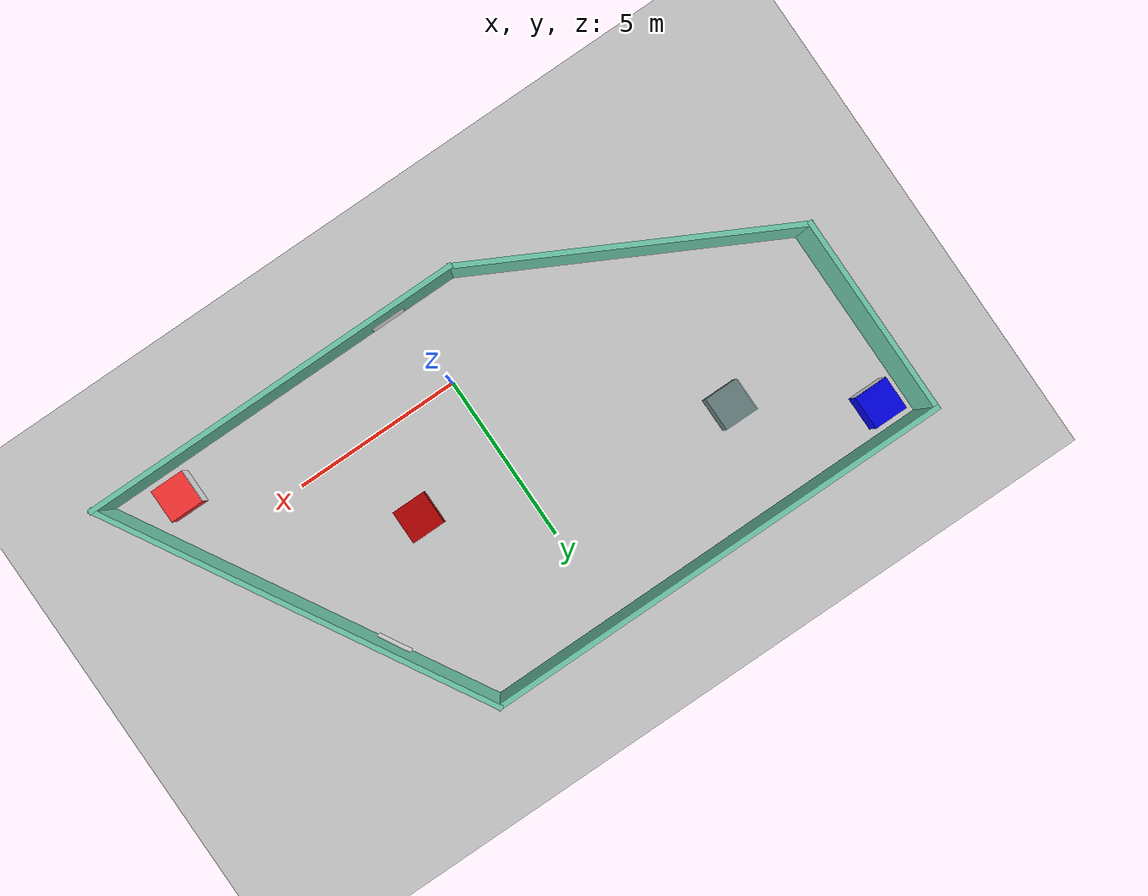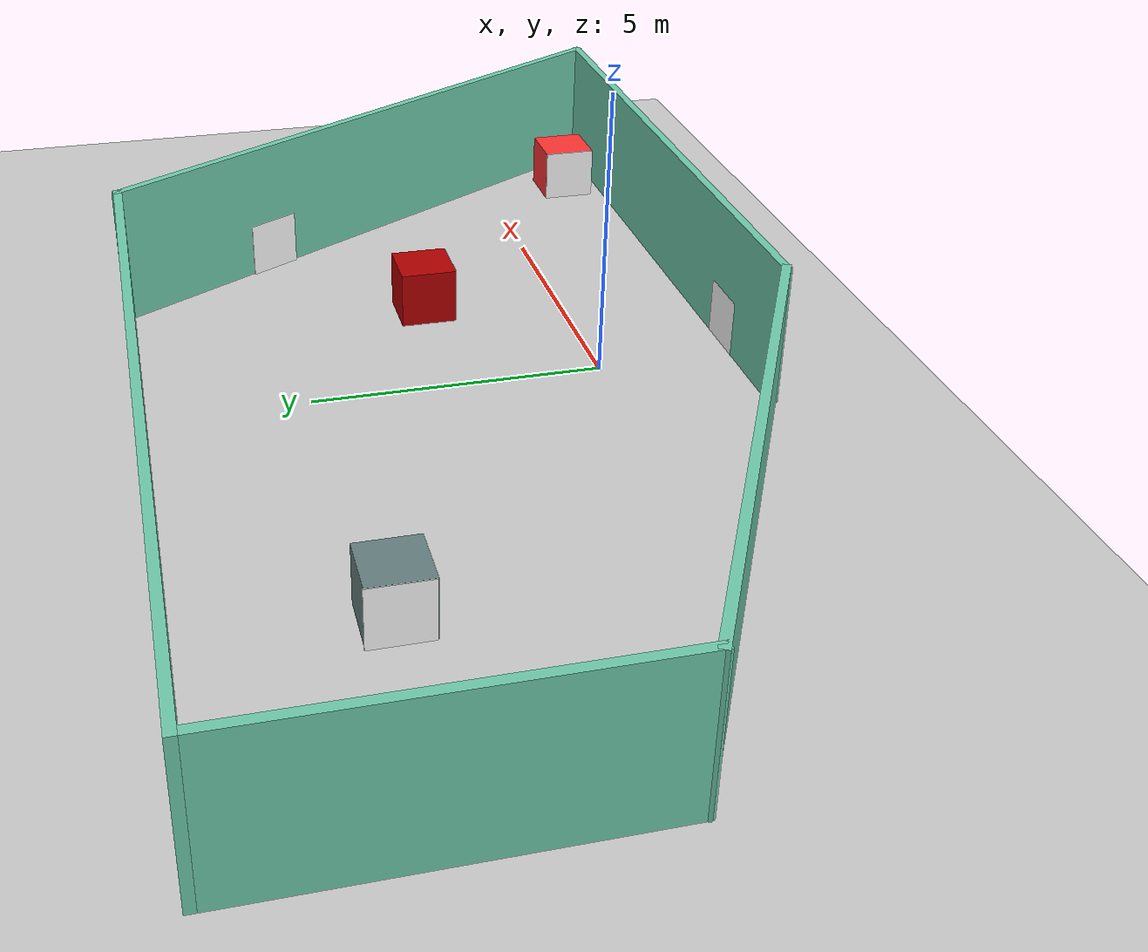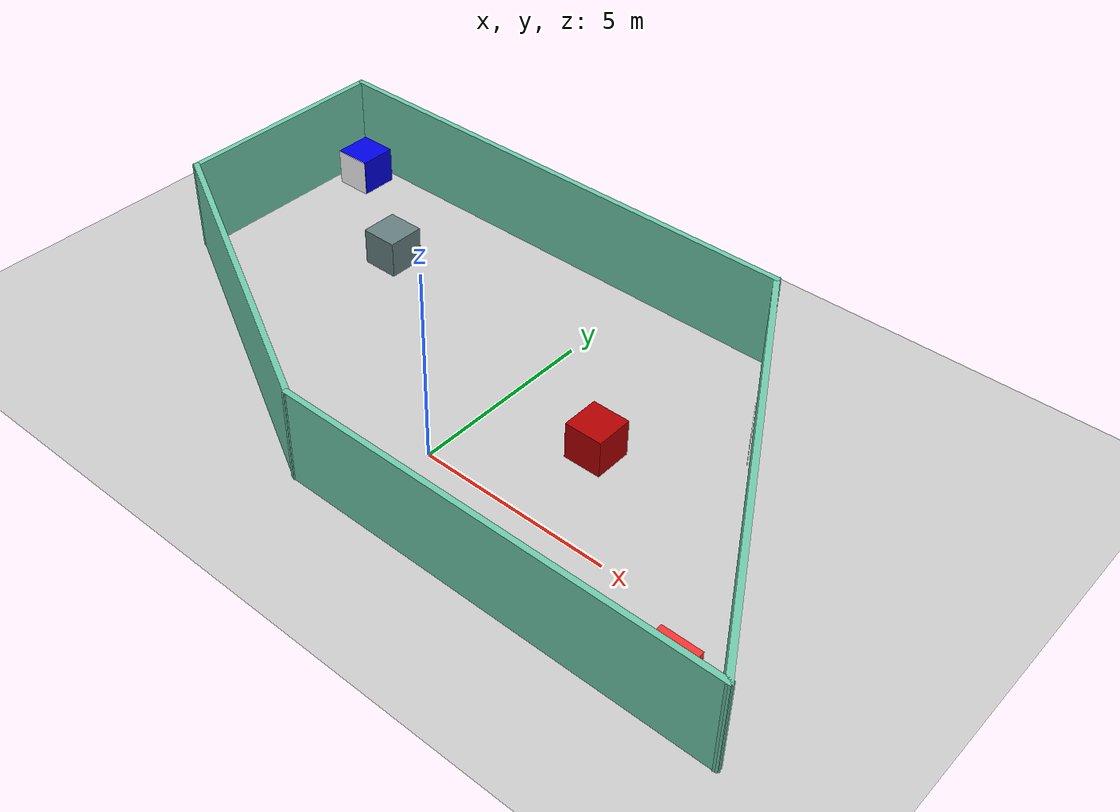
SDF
<sdf version="1.7">
 <world name="default">
  <scene><ambient>0.4 0.4 0.4 1</ambient><background>0.7 0.7 0.7 1</background><shadows>1</shadows></scene>
  <light name="sun" type="directional">
   <pose>0 0 10 0 -0 0</pose>
   <diffuse>0.8 0.8 0.8 1</diffuse>
   <specular>0.2 0.2 0.2 1</specular>
   <attenuation>
    <range>1000</range>
    <constant>0.9</constant>
    <linear>0.01</linear>
    <quadratic>0.001</quadratic>
   </attenuation>
   <direction>-0.5 0.1 -0.9</direction>
   <spot><inner_angle>0</inner_angle><outer_angle>0</outer_angle><falloff>0</falloff></spot>
  </light>
  <model name="ground_plane">
   <static>1</static>
   <link name="link">
    <collision name="collision">
     <geometry><plane><normal>0 0 1</normal><size>100 100</size></plane></geometry>
     <surface>
      <contact><collide_bitmask>65535</collide_bitmask></contact>
      <friction><ode><mu>100</mu><mu2>50</mu2></ode></friction>
     </surface>
    </collision>
    <visual name="visual">
     <cast_shadows>0</cast_shadows>
     <geometry><plane><normal>0 0 1</normal><size>100 100</size></plane></geometry>
     <material>
      <script><uri>file://media/materials/scripts/gazebo.material</uri><name>Gazebo/Grey</name></script>
     </material>
    </visual>
   </link>
  </model>
  <physics type="ode">
   <real_time_update_rate>1000</real_time_update_rate>
   <max_step_size>0.001</max_step_size>
   <real_time_factor>1</real_time_factor>
   <ode>
    <solver>
     <type>quick</type>
     <iters>150</iters>
     <precon_iters>0</precon_iters>
     <sor>1.4</sor>
     <use_dynamic_moi_rescaling>1</use_dynamic_moi_rescaling>
    </solver>
    <constraints>
     <cfm>1e-05</cfm>
     <erp>0.2</erp>
     <contact_max_correcting_vel>2000</contact_max_correcting_vel>
     <contact_surface_layer>0.01</contact_surface_layer>
    </constraints>
   </ode>
  </physics>
  <gravity>0 0 -9.8</gravity>
  <magnetic_field>6e-06 2.3e-05 -4.2e-05</magnetic_field>
  <atmosphere type="adiabatic"/>
  <spherical_coordinates>
   <surface_model>EARTH_WGS84</surface_model>
   <latitude_deg>0</latitude_deg>
   <longitude_deg>0</longitude_deg>
   <elevation>0</elevation>
   <heading_deg>0</heading_deg>
  </spherical_coordinates>
  <model name="maze">
   <pose>-0.216892 2.6712 0 0 -0 0</pose>
   <link name="Wall_0">
    <collision name="Wall_0_Collision">
     <geometry><box><size>11.5 0.15 2.5</size></box></geometry>
     <pose>0 0 1.25 0 -0 0</pose>
    </collision>
    <visual name="Wall_0_Visual">
     <pose>0 0 1.25 0 -0 0</pose>
     <geometry><box><size>11.5 0.15 2.5</size></box></geometry>
     <material>
      <script><uri>file://media/materials/scripts/gazebo.material</uri><name>Gazebo/Grey</name></script>
      <ambient>0.435294 0.796078 0.67451 1</ambient>
     </material>
     <meta><layer>0</layer></meta>
    </visual>
    <pose>4.21189 -5.1312 0 0 -0 0</pose>
   </link>
   <link name="Wall_2">
    <collision name="Wall_2_Collision">
     <geometry><box><size>12 0.15 2.5</size></box></geometry>
     <pose>0 0 1.25 0 -0 0</pose>
    </collision>
    <visual name="Wall_2_Visual">
     <pose>0 0 1.25 0 -0 0</pose>
     <geometry><box><size>12 0.15 2.5</size></box></geometry>
     <material>
      <script><uri>file://media/materials/scripts/gazebo.material</uri><name>Gazebo/Grey</name></script>
      <ambient>0.435294 0.796078 0.67451 1</ambient>
     </material>
     <meta><layer>0</layer></meta>
    </visual>
    <pose>6.92439 -0 0 0 -0 2.0944</pose>
   </link>
   <link name="Wall_3">
    <collision name="Wall_3_Collision">
     <geometry><box><size>14 0.15 2.5</size></box></geometry>
     <pose>0 0 1.25 0 -0 0</pose>
    </collision>
    <visual name="Wall_3_Visual">
     <pose>0 0 1.25 0 -0 0</pose>
     <geometry><box><size>14 0.15 2.5</size></box></geometry>
     <material>
      <script><uri>file://media/materials/scripts/gazebo.material</uri><name>Gazebo/Grey</name></script>
      <ambient>0.435294 0.796078 0.67451 1</ambient>
     </material>
     <meta><layer>0</layer></meta>
    </visual>
    <pose>-2.96311 5.1312 0 0 -0 3.14159</pose>
   </link>
   <link name="Wall_4">
    <collision name="Wall_4_Collision">
     <geometry><box><size>6 0.15 2.5</size></box></geometry>
     <pose>0 0 1.25 0 -0 0</pose>
    </collision>
    <visual name="Wall_4_Visual">
     <pose>0 0 1.25 0 -0 0</pose>
     <geometry><box><size>6 0.15 2.5</size></box></geometry>
     <material>
      <script><uri>file://media/materials/scripts/gazebo.material</uri><name>Gazebo/Grey</name></script>
      <ambient>0.435294 0.796078 0.67451 1</ambient>
     </material>
     <meta><layer>0</layer></meta>
    </visual>
    <pose>-9.88811 2.2062 0 0 -0 -1.5708</pose>
   </link>
   <link name="Wall_5">
    <collision name="Wall_5_Collision">
     <geometry><box><size>9.66052 0.15 2.5</size></box></geometry>
     <pose>0 0 1.25 0 -0 0</pose>
    </collision>
    <visual name="Wall_5_Visual">
     <pose>0 0 1.25 0 -0 0</pose>
     <geometry><box><size>9.66052 0.15 2.5</size></box></geometry>
     <material>
      <script><uri>file://media/materials/scripts/gazebo.material</uri><name>Gazebo/Grey</name></script>
      <ambient>0.435294 0.796078 0.67451 1</ambient>
     </material>
     <meta><layer>0</layer></meta>
    </visual>
    <pose>-5.67561 -2.925 0 0 -0 -0.482449</pose>
   </link>
   <static>1</static>
  </model>
  <model name="unit_box_2">
   <link name="link">
    <inertial>
     <mass>100</mass>
     <inertia><ixx>16.6667</ixx><ixy>0</ixy><ixz>0</ixz><iyy>16.6667</iyy><iyz>0</iyz><izz>16.6667</izz></inertia>
    </inertial>
    <visual name="visual">
     <geometry><box><size>1 1 1</size></box></geometry>
     <material>
      <script><name>Gazebo/Grey</name><uri>file://media/materials/scripts/gazebo.material</uri></script>
      <shader type="pixel"><normal_map>__default__</normal_map></shader>
      <ambient>0.3 0.3 0.3 1</ambient>
      <diffuse>1 0.2 0.2 1</diffuse>
      <specular>0.01 0.01 0.01 1</specular>
      <emissive>0 0 0 1</emissive>
     </material>
    </visual>
    <collision name="collision">
     <geometry><box><size>1 1 1</size></box></geometry>
     <surface>
      <friction>
       <ode><mu>1</mu><mu2>1</mu2><fdir1>0 0 0</fdir1><slip1>0</slip1><slip2>0</slip2></ode>
       <torsional>
        <coefficient>1</coefficient>
        <patch_radius>0</patch_radius>
        <surface_radius>0</surface_radius>
        <use_patch_radius>1</use_patch_radius>
        <ode><slip>0</slip></ode>
       </torsional>
      </friction>
      <bounce><restitution_coefficient>0</restitution_coefficient><threshold>1e+06</threshold></bounce>
      <contact>
       <collide_without_contact>0</collide_without_contact>
       <collide_without_contact_bitmask>1</collide_without_contact_bitmask>
       <collide_bitmask>1</collide_bitmask>
       <ode>
        <soft_cfm>0</soft_cfm>
        <soft_erp>0.2</soft_erp>
        <kp>1e+13</kp>
        <kd>1</kd>
        <max_vel>0.01</max_vel>
        <min_depth>0</min_depth>
       </ode>
       <bullet>
        <split_impulse>1</split_impulse>
        <split_impulse_penetration_threshold>-0.01</split_impulse_penetration_threshold>
        <soft_cfm>0</soft_cfm>
        <soft_erp>0.2</soft_erp>
        <kp>1e+13</kp>
        <kd>1</kd>
       </bullet>
      </contact>
     </surface>
    </collision>
   </link>
   <static>0</static>
   <pose>7.83989 -1.64201 0.5 0 -0 0</pose>
  </model>
  <model name="unit_box_0">
   <link name="link">
    <inertial>
     <mass>99.8</mass>
     <inertia><ixx>16.6333</ixx><ixy>0</ixy><ixz>0</ixz><iyy>16.6333</iyy><iyz>0</iyz><izz>16.6333</izz></inertia>
    </inertial>
    <visual name="visual">
     <geometry><box><size>1 1 1</size></box></geometry>
     <material>
      <script><name>Gazebo/Grey</name><uri>file://media/materials/scripts/gazebo.material</uri></script>
      <shader type="pixel"><normal_map>__default__</normal_map></shader>
      <diffuse>0.7 0 0 0</diffuse>
      <ambient>0.3 0.3 0.3 1</ambient>
      <specular>0.01 0.01 0.01 1</specular>
      <emissive>0 0 0 1</emissive>
     </material>
    </visual>
    <collision name="collision">
     <geometry><box><size>1 1 1</size></box></geometry>
     <surface>
      <friction>
       <ode><mu>1</mu><mu2>1</mu2><fdir1>0 0 0</fdir1><slip1>0</slip1><slip2>0</slip2></ode>
       <torsional>
        <coefficient>1</coefficient>
        <patch_radius>0</patch_radius>
        <surface_radius>0</surface_radius>
        <use_patch_radius>1</use_patch_radius>
        <ode><slip>0</slip></ode>
       </torsional>
      </friction>
      <bounce><restitution_coefficient>0</restitution_coefficient><threshold>1e+06</threshold></bounce>
      <contact>
       <collide_without_contact>0</collide_without_contact>
       <collide_without_contact_bitmask>1</collide_without_contact_bitmask>
       <collide_bitmask>1</collide_bitmask>
       <ode>
        <soft_cfm>0</soft_cfm>
        <soft_erp>0.2</soft_erp>
        <kp>1e+13</kp>
        <kd>1</kd>
        <max_vel>0.01</max_vel>
        <min_depth>0</min_depth>
       </ode>
       <bullet>
        <split_impulse>1</split_impulse>
        <split_impulse_penetration_threshold>-0.01</split_impulse_penetration_threshold>
        <soft_cfm>0</soft_cfm>
        <soft_erp>0.2</soft_erp>
        <kp>1e+13</kp>
        <kd>1</kd>
       </bullet>
      </contact>
     </surface>
    </collision>
   </link>
   <static>0</static>
   <pose>2.79075 2.50355 0.5 0 -0 0</pose>
  </model>
  <model name="unit_box_1">
   <link name="link">
    <inertial>
     <mass>100</mass>
     <inertia><ixx>16.6667</ixx><ixy>0</ixy><ixz>0</ixz><iyy>16.6667</iyy><iyz>0</iyz><izz>16.6667</izz></inertia>
    </inertial>
    <visual name="visual">
     <geometry><box><size>1 1 1</size></box></geometry>
     <material>
      <script><name>Gazebo/Grey</name><uri>file://media/materials/scripts/gazebo.material</uri></script>
      <shader type="pixel"><normal_map>__default__</normal_map></shader>
      <diffuse>0 0 0.9 0</diffuse>
      <ambient>0.3 0.3 0.3 1</ambient>
      <specular>0.01 0.01 0.01 1</specular>
      <emissive>0 0 0 1</emissive>
     </material>
    </visual>
    <collision name="collision">
     <geometry><box><size>1 1 1</size></box></geometry>
     <surface>
      <friction>
       <ode><mu>1</mu><mu2>1</mu2><fdir1>0 0 0</fdir1><slip1>0</slip1><slip2>0</slip2></ode>
       <torsional>
        <coefficient>1</coefficient>
        <patch_radius>0</patch_radius>
        <surface_radius>0</surface_radius>
        <use_patch_radius>1</use_patch_radius>
        <ode><slip>0</slip></ode>
       </torsional>
      </friction>
      <bounce><restitution_coefficient>0</restitution_coefficient><threshold>1e+06</threshold></bounce>
      <contact>
       <collide_without_contact>0</collide_without_contact>
       <collide_without_contact_bitmask>1</collide_without_contact_bitmask>
       <collide_bitmask>1</collide_bitmask>
       <ode>
        <soft_cfm>0</soft_cfm>
        <soft_erp>0.2</soft_erp>
        <kp>1e+13</kp>
        <kd>1</kd>
        <max_vel>0.01</max_vel>
        <min_depth>0</min_depth>
       </ode>
       <bullet>
        <split_impulse>1</split_impulse>
        <split_impulse_penetration_threshold>-0.01</split_impulse_penetration_threshold>
        <soft_cfm>0</soft_cfm>
        <soft_erp>0.2</soft_erp>
        <kp>1e+13</kp>
        <kd>1</kd>
       </bullet>
      </contact>
     </surface>
    </collision>
   </link>
   <static>0</static>
   <pose>-9.23043 6.9902 0.5 0 -0 0</pose>
  </model>
  <model name="unit_box">
   <link name="link">
    <inertial>
     <mass>100</mass>
     <inertia><ixx>16.6667</ixx><ixy>0</ixy><ixz>0</ixz><iyy>16.6667</iyy><iyz>0</iyz><izz>16.6667</izz></inertia>
    </inertial>
    <visual name="visual">
     <geometry><box><size>1 1 1</size></box></geometry>
     <material>
      <script><name>Gazebo/Grey</name><uri>file://media/materials/scripts/gazebo.material</uri></script>
      <shader type="pixel"><normal_map>__default__</normal_map></shader>
      <diffuse>0.4 0.5 0.5 1</diffuse>
      <ambient>0.3 0.3 0.3 1</ambient>
      <specular>0.01 0.01 0.01 1</specular>
      <emissive>0 0 0 1</emissive>
     </material>
    </visual>
    <collision name="collision">
     <geometry><box><size>1 1 1</size></box></geometry>
     <surface>
      <friction>
       <ode><mu>1</mu><mu2>1</mu2><fdir1>0 0 0</fdir1><slip1>0</slip1><slip2>0</slip2></ode>
       <torsional>
        <coefficient>1</coefficient>
        <patch_radius>0</patch_radius>
        <surface_radius>0</surface_radius>
        <use_patch_radius>1</use_patch_radius>
        <ode><slip>0</slip></ode>
       </torsional>
      </friction>
      <bounce><restitution_coefficient>0</restitution_coefficient><threshold>1e+06</threshold></bounce>
      <contact>
       <collide_without_contact>0</collide_without_contact>
       <collide_without_contact_bitmask>1</collide_without_contact_bitmask>
       <collide_bitmask>1</collide_bitmask>
       <ode>
        <soft_cfm>0</soft_cfm>
        <soft_erp>0.2</soft_erp>
        <kp>1e+13</kp>
        <kd>1</kd>
        <max_vel>0.01</max_vel>
        <min_depth>0</min_depth>
       </ode>
       <bullet>
        <split_impulse>1</split_impulse>
        <split_impulse_penetration_threshold>-0.01</split_impulse_penetration_threshold>
        <soft_cfm>0</soft_cfm>
        <soft_erp>0.2</soft_erp>
        <kp>1e+13</kp>
        <kd>1</kd>
       </bullet>
      </contact>
     </surface>
    </collision>
   </link>
   <static>0</static>
   <pose>-5.88736 4.74514 0.5 0 -0 0</pose>
  </model>
  <model name="Apriltag36_11_00006">
   <link name="main">
    <pose>1.14 0.26 0.5 0 -1.57 0</pose>
    <inertial>
     <mass>1000</mass>
     <inertia><ixx>1</ixx><ixy>0</ixy><ixz>0</ixz><iyy>1</iyy><iyz>0</iyz><izz>1</izz></inertia>
    </inertial>
    <visual name="main_Visual">
     <geometry><box><size>1 1 0.01</size></box></geometry>
     <material>
      <script>
       <uri>model://Apriltag36_11_00006/materials/scripts</uri>
       <uri>model://Apriltag36_11_00006/materials/textures</uri>
       <name>Apriltag36_11_00006</name>
      </script>
      <shader type="pixel"><normal_map>__default__</normal_map></shader>
      <ambient>1 1 1 1</ambient>
      <diffuse>1 1 1 1</diffuse>
      <specular>0 0 0 1</specular>
      <emissive>0 0 0 1</emissive>
     </material>
    </visual>
   </link>
   <static>1</static>
   <pose>-7.53761 4.49691 0 0 -0 0</pose>
  </model>
  <model name="Apriltag36_11_00008">
   <link name="main">
    <pose>0.95 -0.07 0.5 0.515007 -1.57 -7e-06</pose>
    <inertial>
     <mass>1000</mass>
     <inertia><ixx>1</ixx><ixy>0</ixy><ixz>0</ixz><iyy>1</iyy><iyz>0</iyz><izz>1</izz></inertia>
    </inertial>
    <visual name="main_Visual">
     <geometry><box><size>1 1 0.01</size></box></geometry>
     <material>
      <script>
       <uri>model://Apriltag36_11_00008/materials/scripts</uri>
       <uri>model://Apriltag36_11_00008/materials/textures</uri>
       <name>Apriltag36_11_00008</name>
      </script>
      <shader type="pixel"><normal_map>__default__</normal_map></shader>
      <ambient>1 1 1 1</ambient>
      <diffuse>1 1 1 1</diffuse>
      <specular>0 0 0 1</specular>
      <emissive>0 0 0 1</emissive>
     </material>
    </visual>
   </link>
   <static>1</static>
   <pose>4.31029 5.01161 -0 0 -0 0</pose>
  </model>
  <model name="Apriltag36_11_00000">
   <link name="main">
    <pose>-0.03 0.62 0.5 1.57 -0 0</pose>
    <inertial>
     <mass>1</mass>
     <inertia><ixx>1</ixx><ixy>0</ixy><ixz>0</ixz><iyy>1</iyy><iyz>0</iyz><izz>1</izz></inertia>
    </inertial>
    <visual name="main_Visual">
     <geometry><box><size>1 1 0.01</size></box></geometry>
     <material>
      <script>
       <uri>model://Apriltag36_11_00000/materials/scripts</uri>
       <uri>model://Apriltag36_11_00000/materials/textures</uri>
       <name>Apriltag36_11_00000</name>
      </script>
      <shader type="pixel"><normal_map>__default__</normal_map></shader>
      <ambient>1 1 1 1</ambient>
      <diffuse>1 1 1 1</diffuse>
      <specular>0 0 0 1</specular>
      <emissive>0 0 0 1</emissive>
     </material>
    </visual>
   </link>
   <static>1</static>
   <pose>-9.19884 5.85693 0 0 -0 0</pose>
  </model>
  <model name="Apriltag36_11_00012">
   <link name="main">
    <pose>2.04 -0.245 0.5 0 -1.57 0</pose>
    <inertial>
     <mass>1000</mass>
     <inertia><ixx>1</ixx><ixy>0</ixy><ixz>0</ixz><iyy>1</iyy><iyz>0</iyz><izz>1</izz></inertia>
    </inertial>
    <visual name="main_Visual">
     <geometry><box><size>1 1 0.01</size></box></geometry>
     <material>
      <script>
       <uri>model://Apriltag36_11_00012/materials/scripts</uri>
       <uri>model://Apriltag36_11_00012/materials/textures</uri>
       <name>Apriltag36_11_00012</name>
      </script>
      <shader type="pixel"><normal_map>__default__</normal_map></shader>
      <ambient>1 1 1 1</ambient>
      <diffuse>1 1 1 1</diffuse>
      <specular>0 0 0 1</specular>
      <emissive>0 0 0 1</emissive>
     </material>
    </visual>
   </link>
   <static>1</static>
   <pose>5.29511 -1.40083 -0 0 -0 0</pose>
  </model>
  <model name="Apriltag36_11_00015">
   <link name="main">
    <pose>4 -2 0.5 -1.57 0 0</pose>
    <inertial>
     <mass>1000</mass>
     <inertia><ixx>1</ixx><ixy>0</ixy><ixz>0</ixz><iyy>1</iyy><iyz>0</iyz><izz>1</izz></inertia>
    </inertial>
    <visual name="main_Visual">
     <geometry><box><size>1 1 0.01</size></box></geometry>
     <material>
      <script>
       <uri>model://Apriltag36_11_00015/materials/scripts</uri>
       <uri>model://Apriltag36_11_00015/materials/textures</uri>
       <name>Apriltag36_11_00015</name>
      </script>
      <shader type="pixel"><normal_map>__default__</normal_map></shader>
      <ambient>1 1 1 1</ambient>
      <diffuse>1 1 1 1</diffuse>
      <specular>0 0 0 1</specular>
      <emissive>0 0 0 1</emissive>
     </material>
    </visual>
   </link>
   <static>1</static>
   <pose>-3.54185 -0.388813 -0 0 -0 0</pose>
  </model>
 </world>
</sdf>
